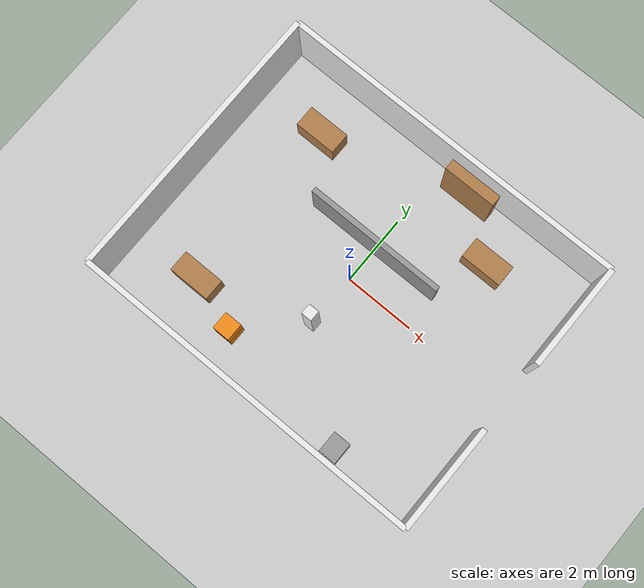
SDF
<?xml version="1.0"?>
<sdf version="1.6">
  <world name="office">

    <!-- ── Physics & Scene ─────────────────────────────── -->
    <physics type="ode">
      <real_time_update_rate>1000</real_time_update_rate>
      <max_step_size>0.001</max_step_size>
      <real_time_factor>1</real_time_factor>
    </physics>

    <scene>
      <ambient>0.4 0.4 0.4 1</ambient>
      <background>0.7 0.7 0.7 1</background>
      <shadows>true</shadows>
    </scene>

    <!-- ── Light ───────────────────────────────────────── -->
    <light name="sun" type="directional">
      <cast_shadows>true</cast_shadows>
      <pose>0 0 10 0 0 0</pose>
      <diffuse>0.8 0.8 0.8 1</diffuse>
      <specular>0.2 0.2 0.2 1</specular>
      <direction>-0.5 0.1 -0.9</direction>
    </light>

    <!-- ── Ground Plane ────────────────────────────────── -->
    <model name="ground_plane">
      <static>true</static>
      <link name="link">
        <collision name="collision">
          <geometry><plane><normal>0 0 1</normal><size>50 50</size></plane></geometry>
          <surface><friction><ode><mu>100</mu><mu2>50</mu2></ode></friction></surface>
        </collision>
        <visual name="visual">
          <geometry><plane><normal>0 0 1</normal><size>50 50</size></plane></geometry>
          <material>
            <script>
              <uri>file://media/materials/scripts/gazebo.material</uri>
              <name>Gazebo/Grey</name>
            </script>
          </material>
        </visual>
      </link>
    </model>

    <!-- ── OUTER WALLS ─────────────────────────────────── -->

    <!-- South wall (ผนังด้านใต้) -->
    <model name="wall_south">
      <static>true</static>
      <pose>0 -4 1 0 0 0</pose>
      <link name="link">
        <collision name="collision">
          <geometry><box><size>10 0.15 2</size></box></geometry>
        </collision>
        <visual name="visual">
          <geometry><box><size>10 0.15 2</size></box></geometry>
          <material><script><uri>file://media/materials/scripts/gazebo.material</uri><name>Gazebo/White</name></script></material>
        </visual>
      </link>
    </model>

    <!-- North wall (ผนังด้านเหนือ) -->
    <model name="wall_north">
      <static>true</static>
      <pose>0 4 1 0 0 0</pose>
      <link name="link">
        <collision name="collision">
          <geometry><box><size>10 0.15 2</size></box></geometry>
        </collision>
        <visual name="visual">
          <geometry><box><size>10 0.15 2</size></box></geometry>
          <material><script><uri>file://media/materials/scripts/gazebo.material</uri><name>Gazebo/White</name></script></material>
        </visual>
      </link>
    </model>

    <!-- West wall (ผนังด้านตะวันตก) -->
    <model name="wall_west">
      <static>true</static>
      <pose>-5 0 1 0 0 0</pose>
      <link name="link">
        <collision name="collision">
          <geometry><box><size>0.15 8 2</size></box></geometry>
        </collision>
        <visual name="visual">
          <geometry><box><size>0.15 8 2</size></box></geometry>
          <material><script><uri>file://media/materials/scripts/gazebo.material</uri><name>Gazebo/White</name></script></material>
        </visual>
      </link>
    </model>

    <!-- East wall segment 1 (เหนือประตู) -->
    <model name="wall_east_north">
      <static>true</static>
      <pose>5 2.5 1 0 0 0</pose>
      <link name="link">
        <collision name="collision">
          <geometry><box><size>0.15 3 2</size></box></geometry>
        </collision>
        <visual name="visual">
          <geometry><box><size>0.15 3 2</size></box></geometry>
          <material><script><uri>file://media/materials/scripts/gazebo.material</uri><name>Gazebo/White</name></script></material>
        </visual>
      </link>
    </model>

    <!-- East wall segment 2 (ใต้ประตู) -->
    <model name="wall_east_south">
      <static>true</static>
      <pose>5 -2.5 1 0 0 0</pose>
      <link name="link">
        <collision name="collision">
          <geometry><box><size>0.15 3 2</size></box></geometry>
        </collision>
        <visual name="visual">
          <geometry><box><size>0.15 3 2</size></box></geometry>
          <material><script><uri>file://media/materials/scripts/gazebo.material</uri><name>Gazebo/White</name></script></material>
        </visual>
      </link>
    </model>

    <!-- ── INNER WALL (แบ่งโซน) ────────────────────────── -->
    <model name="wall_inner">
      <static>true</static>
      <pose>0 1 0.75 0 0 0</pose>
      <link name="link">
        <collision name="collision">
          <geometry><box><size>4 0.15 1.5</size></box></geometry>
        </collision>
        <visual name="visual">
          <geometry><box><size>4 0.15 1.5</size></box></geometry>
          <material><script><uri>file://media/materials/scripts/gazebo.material</uri><name>Gazebo/Grey</name></script></material>
        </visual>
      </link>
    </model>

    <!-- ═══════════════════════════════════════════════════
         FURNITURE
    ════════════════════════════════════════════════════════ -->

    <!-- Desk 1 (โต๊ะทำงาน มุมซ้ายบน) -->
    <model name="desk_1">
      <static>true</static>
      <pose>-3 2.5 0.375 0 0 0</pose>
      <link name="link">
        <collision name="collision">
          <geometry><box><size>1.2 0.6 0.75</size></box></geometry>
        </collision>
        <visual name="visual">
          <geometry><box><size>1.2 0.6 0.75</size></box></geometry>
          <material><script><uri>file://media/materials/scripts/gazebo.material</uri><name>Gazebo/Wood</name></script></material>
        </visual>
      </link>
    </model>

    <!-- Desk 2 (โต๊ะทำงาน มุมขวาบน) -->
    <model name="desk_2">
      <static>true</static>
      <pose>2.5 2.5 0.375 0 0 0</pose>
      <link name="link">
        <collision name="collision">
          <geometry><box><size>1.2 0.6 0.75</size></box></geometry>
        </collision>
        <visual name="visual">
          <geometry><box><size>1.2 0.6 0.75</size></box></geometry>
          <material><script><uri>file://media/materials/scripts/gazebo.material</uri><name>Gazebo/Wood</name></script></material>
        </visual>
      </link>
    </model>

    <!-- Desk 3 (โต๊ะทำงาน มุมซ้ายล่าง) -->
    <model name="desk_3">
      <static>true</static>
      <pose>-3 -2.5 0.375 0 0 0</pose>
      <link name="link">
        <collision name="collision">
          <geometry><box><size>1.2 0.6 0.75</size></box></geometry>
        </collision>
        <visual name="visual">
          <geometry><box><size>1.2 0.6 0.75</size></box></geometry>
          <material><script><uri>file://media/materials/scripts/gazebo.material</uri><name>Gazebo/Wood</name></script></material>
        </visual>
      </link>
    </model>

    <!-- Bookshelf (ชั้นหนังสือ ผนังเหนือ) -->
    <model name="bookshelf">
      <static>true</static>
      <pose>1 3.6 0.9 0 0 0</pose>
      <link name="link">
        <collision name="collision">
          <geometry><box><size>1.5 0.3 1.8</size></box></geometry>
        </collision>
        <visual name="visual">
          <geometry><box><size>1.5 0.3 1.8</size></box></geometry>
          <material><script><uri>file://media/materials/scripts/gazebo.material</uri><name>Gazebo/WoodFloor</name></script></material>
        </visual>
      </link>
    </model>

    <!-- Filing Cabinet (ตู้เก็บเอกสาร) -->
    <model name="cabinet">
      <static>true</static>
      <pose>2.5 -3.6 0.6 0 0 0</pose>
      <link name="link">
        <collision name="collision">
          <geometry><box><size>0.5 0.6 1.2</size></box></geometry>
        </collision>
        <visual name="visual">
          <geometry><box><size>0.5 0.6 1.2</size></box></geometry>
          <material><script><uri>file://media/materials/scripts/gazebo.material</uri><name>Gazebo/Grey</name></script></material>
        </visual>
      </link>
    </model>

    <!-- Column / Pillar (เสากลางห้อง) -->
    <model name="pillar">
      <static>true</static>
      <pose>0 -1.5 1 0 0 0</pose>
      <link name="link">
        <collision name="collision">
          <geometry><box><size>0.3 0.3 2</size></box></geometry>
        </collision>
        <visual name="visual">
          <geometry><box><size>0.3 0.3 2</size></box></geometry>
          <material><script><uri>file://media/materials/scripts/gazebo.material</uri><name>Gazebo/White</name></script></material>
        </visual>
      </link>
    </model>

    <!-- Box stack 1 (กล่องซ้อน — สำหรับ LiDAR test) -->
    <model name="box_stack_1">
      <static>true</static>
      <pose>-1.5 -3 0.25 0 0 0</pose>
      <link name="link">
        <collision name="collision">
          <geometry><box><size>0.5 0.5 0.5</size></box></geometry>
        </collision>
        <visual name="visual">
          <geometry><box><size>0.5 0.5 0.5</size></box></geometry>
          <material><script><uri>file://media/materials/scripts/gazebo.material</uri><name>Gazebo/Orange</name></script></material>
        </visual>
      </link>
    </model>

    <!-- Box stack 2 -->
    <model name="box_stack_2">
      <static>true</static>
      <pose>-1.5 -3 0.75 0 0 0</pose>
      <link name="link">
        <collision name="collision">
          <geometry><box><size>0.5 0.5 0.5</size></box></geometry>
        </collision>
        <visual name="visual">
          <geometry><box><size>0.5 0.5 0.5</size></box></geometry>
          <material><script><uri>file://media/materials/scripts/gazebo.material</uri><name>Gazebo/Orange</name></script></material>
        </visual>
      </link>
    </model>

  </world>
</sdf>
